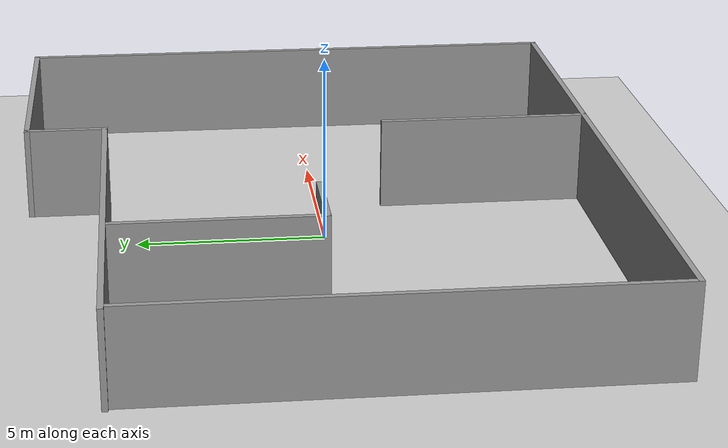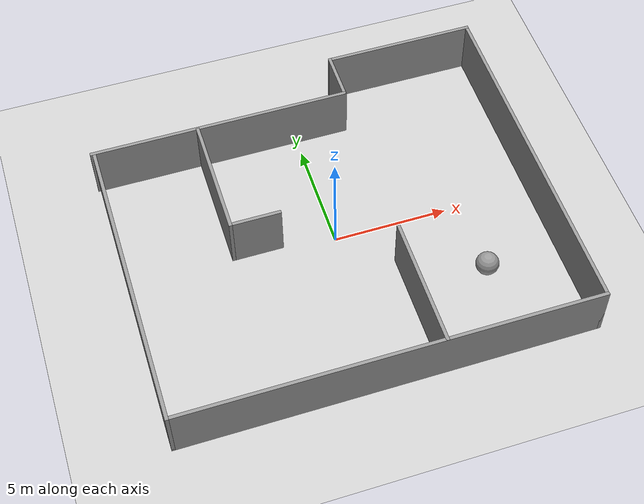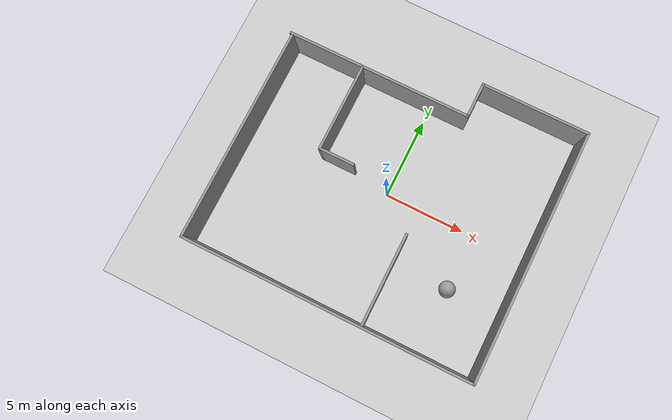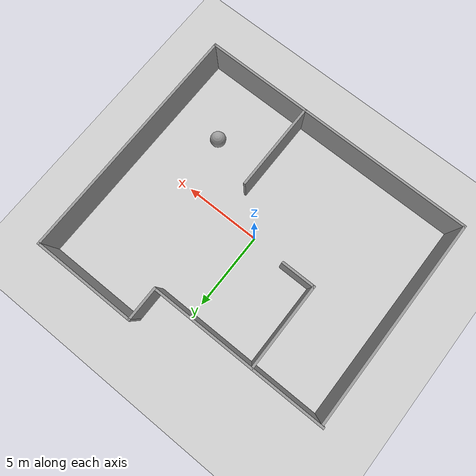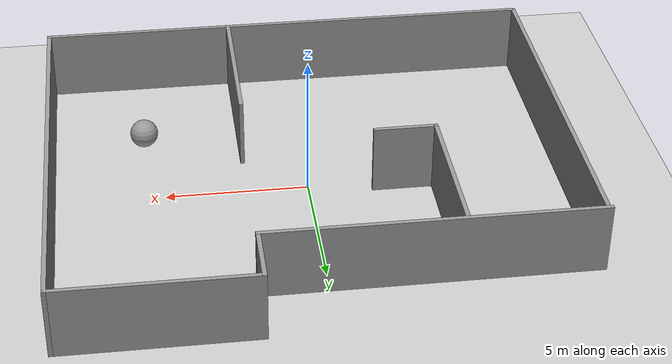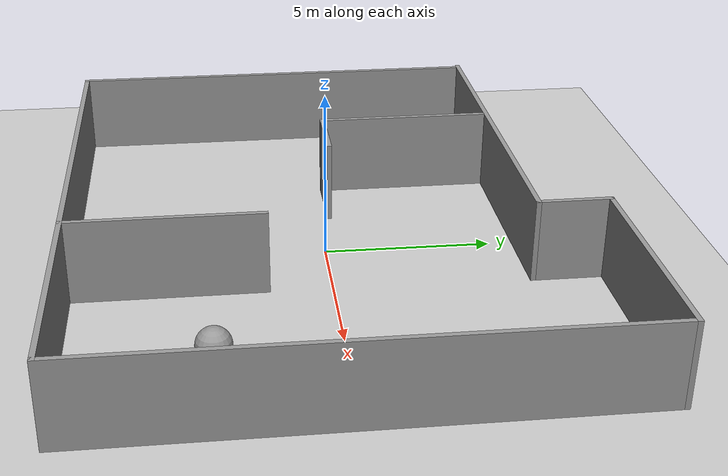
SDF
<sdf version="1.6">
 <world name="default">
  <light name="sun" type="directional">
   <pose>0 0 10 0 -0 0</pose>
   <diffuse>0.8 0.8 0.8 1</diffuse>
   <specular>0.1 0.1 0.1 1</specular>
   <attenuation>
    <range>1000</range>
    <constant>0.9</constant>
    <linear>0.01</linear>
    <quadratic>0.001</quadratic>
   </attenuation>
   <direction>-0.5 0.5 -1</direction>
  </light>
  <model name="ground_plane">
   <static>1</static>
   <link name="link">
    <collision name="collision">
     <geometry><plane><normal>0 0 1</normal><size>100 100</size></plane></geometry>
     <surface><friction><ode><mu>100</mu><mu2>50</mu2></ode></friction></surface>
    </collision>
    <visual name="visual">
     <cast_shadows>0</cast_shadows>
     <geometry><plane><normal>0 0 1</normal><size>100 100</size></plane></geometry>
     <material>
      <script><uri>file://media/materials/scripts/gazebo.material</uri><name>Gazebo/Grey</name></script>
     </material>
    </visual>
   </link>
  </model>
  <gravity>0 0 -9.8</gravity>
  <magnetic_field>6e-06 2.3e-05 -4.2e-05</magnetic_field>
  <atmosphere type="adiabatic"/>
  <physics name="default_physics" default="0" type="ode">
   <max_step_size>0.001</max_step_size>
   <real_time_factor>1</real_time_factor>
   <real_time_update_rate>1000</real_time_update_rate>
  </physics>
  <scene><ambient>0.4 0.4 0.4 1</ambient><background>0.7 0.7 0.7 1</background><shadows>1</shadows></scene>
  <spherical_coordinates>
   <surface_model>EARTH_WGS84</surface_model>
   <latitude_deg>0</latitude_deg>
   <longitude_deg>0</longitude_deg>
   <elevation>0</elevation>
   <heading_deg>0</heading_deg>
  </spherical_coordinates>
  <model name="large_world">
   <pose>-0.080517 0.203741 0 0 -0 0</pose>
   <link name="Wall_10">
    <collision name="Wall_10_Collision">
     <geometry><box><size>6.75 0.15 2.5</size></box></geometry>
     <pose>0 0 1.25 0 -0 0</pose>
    </collision>
    <visual name="Wall_10_Visual">
     <pose>0 0 1.25 0 -0 0</pose>
     <geometry><box><size>6.75 0.15 2.5</size></box></geometry>
     <material>
      <script><uri>file://media/materials/scripts/gazebo.material</uri><name>Gazebo/Grey</name></script>
      <ambient>1 1 1 1</ambient>
     </material>
    </visual>
    <pose>5.675 7.675 0 0 -0 3.14159</pose>
   </link>
   <link name="Wall_12">
    <collision name="Wall_12_Collision">
     <geometry><box><size>2.25 0.15 2.5</size></box></geometry>
     <pose>0 0 1.25 0 -0 0</pose>
    </collision>
    <visual name="Wall_12_Visual">
     <pose>0 0 1.25 0 -0 0</pose>
     <geometry><box><size>2.25 0.15 2.5</size></box></geometry>
     <material>
      <script><uri>file://media/materials/scripts/gazebo.material</uri><name>Gazebo/Grey</name></script>
      <ambient>1 1 1 1</ambient>
     </material>
    </visual>
    <pose>2.375 6.625 0 0 0 -1.5708</pose>
   </link>
   <link name="Wall_13">
    <collision name="Wall_13_Collision">
     <geometry><box><size>11.5 0.15 2.5</size></box></geometry>
     <pose>0 0 1.25 0 -0 0</pose>
    </collision>
    <visual name="Wall_13_Visual">
     <pose>0 0 1.25 0 -0 0</pose>
     <geometry><box><size>11.5 0.15 2.5</size></box></geometry>
     <material>
      <script><uri>file://media/materials/scripts/gazebo.material</uri><name>Gazebo/Grey</name></script>
      <ambient>1 1 1 1</ambient>
     </material>
    </visual>
    <pose>-3.3 5.575 0 0 -0 3.14159</pose>
   </link>
   <link name="Wall_15">
    <collision name="Wall_15_Collision">
     <geometry><box><size>5.5 0.15 2.5</size></box></geometry>
     <pose>0 0 1.25 0 -0 0</pose>
    </collision>
    <visual name="Wall_15_Visual">
     <pose>0 0 1.25 0 -0 0</pose>
     <geometry><box><size>5.5 0.15 2.5</size></box></geometry>
     <material>
      <script><uri>file://media/materials/scripts/gazebo.material</uri><name>Gazebo/Grey</name></script>
      <ambient>1 1 1 1</ambient>
     </material>
    </visual>
    <pose>-4.31824 2.83632 0 0 0 -1.5708</pose>
   </link>
   <link name="Wall_16">
    <collision name="Wall_16_Collision">
     <geometry><box><size>2.25 0.15 2.5</size></box></geometry>
     <pose>0 0 1.25 0 -0 0</pose>
    </collision>
    <visual name="Wall_16_Visual">
     <pose>0 0 1.25 0 -0 0</pose>
     <geometry><box><size>2.25 0.15 2.5</size></box></geometry>
     <material>
      <script><uri>file://media/materials/scripts/gazebo.material</uri><name>Gazebo/Grey</name></script>
      <ambient>1 1 1 1</ambient>
     </material>
    </visual>
    <pose>-3.26824 0.161323 0 0 -0 0</pose>
   </link>
   <link name="Wall_18">
    <collision name="Wall_18_Collision">
     <geometry><box><size>5.75 0.15 2.5</size></box></geometry>
     <pose>0 0 1.25 0 -0 0</pose>
    </collision>
    <visual name="Wall_18_Visual">
     <pose>0 0 1.25 0 -0 0</pose>
     <geometry><box><size>5.75 0.15 2.5</size></box></geometry>
     <material>
      <script><uri>file://media/materials/scripts/gazebo.material</uri><name>Gazebo/Grey</name></script>
      <ambient>1 1 1 1</ambient>
     </material>
    </visual>
    <pose>2.22807 -4.87307 0 0 -0 1.5708</pose>
   </link>
   <link name="Wall_5">
    <collision name="Wall_5_Collision">
     <geometry><box><size>13.25 0.15 2.5</size></box></geometry>
     <pose>0 0 1.25 0 -0 0</pose>
    </collision>
    <visual name="Wall_5_Visual">
     <pose>0 0 1.25 0 -0 0</pose>
     <geometry><box><size>13.25 0.15 2.5</size></box></geometry>
     <material>
      <script><uri>file://media/materials/scripts/gazebo.material</uri><name>Gazebo/Grey</name></script>
      <ambient>1 1 1 1</ambient>
     </material>
    </visual>
    <pose>-8.875 -1.125 0 0 0 -1.5708</pose>
   </link>
   <link name="Wall_6">
    <collision name="Wall_6_Collision">
     <geometry><box><size>18 0.15 2.5</size></box></geometry>
     <pose>0 0 1.25 0 -0 0</pose>
    </collision>
    <visual name="Wall_6_Visual">
     <pose>0 0 1.25 0 -0 0</pose>
     <geometry><box><size>18 0.15 2.5</size></box></geometry>
     <material>
      <script><uri>file://media/materials/scripts/gazebo.material</uri><name>Gazebo/Grey</name></script>
      <ambient>1 1 1 1</ambient>
     </material>
    </visual>
    <pose>0.049999 -7.675 0 0 -0 0</pose>
   </link>
   <link name="Wall_7">
    <collision name="Wall_7_Collision">
     <geometry><box><size>15.5 0.15 2.5</size></box></geometry>
     <pose>0 0 1.25 0 -0 0</pose>
    </collision>
    <visual name="Wall_7_Visual">
     <pose>0 0 1.25 0 -0 0</pose>
     <geometry><box><size>15.5 0.15 2.5</size></box></geometry>
     <material>
      <script><uri>file://media/materials/scripts/gazebo.material</uri><name>Gazebo/Grey</name></script>
      <ambient>1 1 1 1</ambient>
     </material>
    </visual>
    <pose>8.975 0 0 0 -0 1.5708</pose>
   </link>
   <static>1</static>
  </model>
  <model name="unit_sphere_0">
   <pose>5.59319 -3.45274 0.5 0 -0 0</pose>
   <link name="link">
    <inertial>
     <mass>1</mass>
     <inertia><ixx>0.1</ixx><ixy>0</ixy><ixz>0</ixz><iyy>0.1</iyy><iyz>0</iyz><izz>0.1</izz></inertia>
    </inertial>
    <collision name="collision"><geometry><sphere><radius>0.5</radius></sphere></geometry></collision>
    <visual name="visual">
     <geometry><sphere><radius>0.5</radius></sphere></geometry>
     <material>
      <script><name>Gazebo/Grey</name><uri>file://media/materials/scripts/gazebo.material</uri></script>
     </material>
    </visual>
   </link>
  </model>
 </world>
</sdf>
